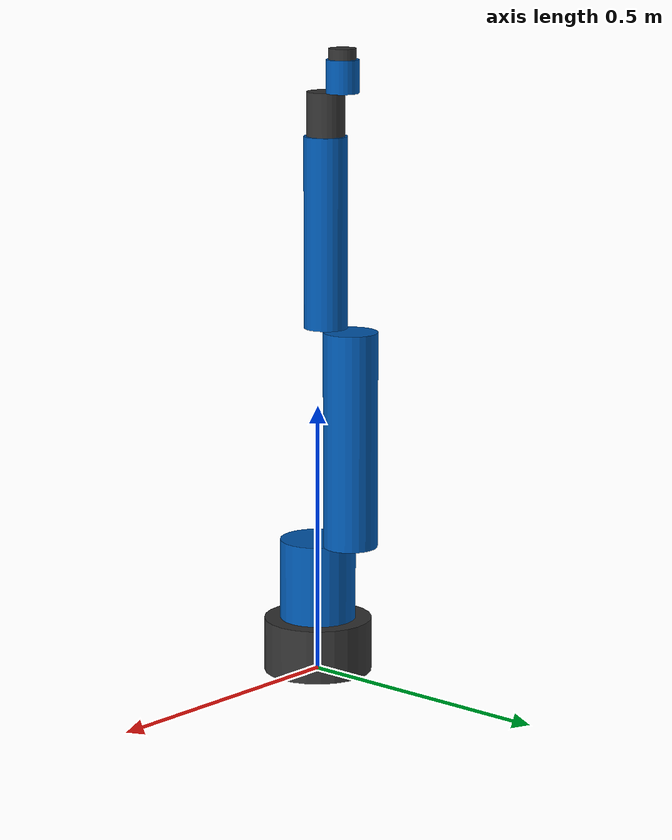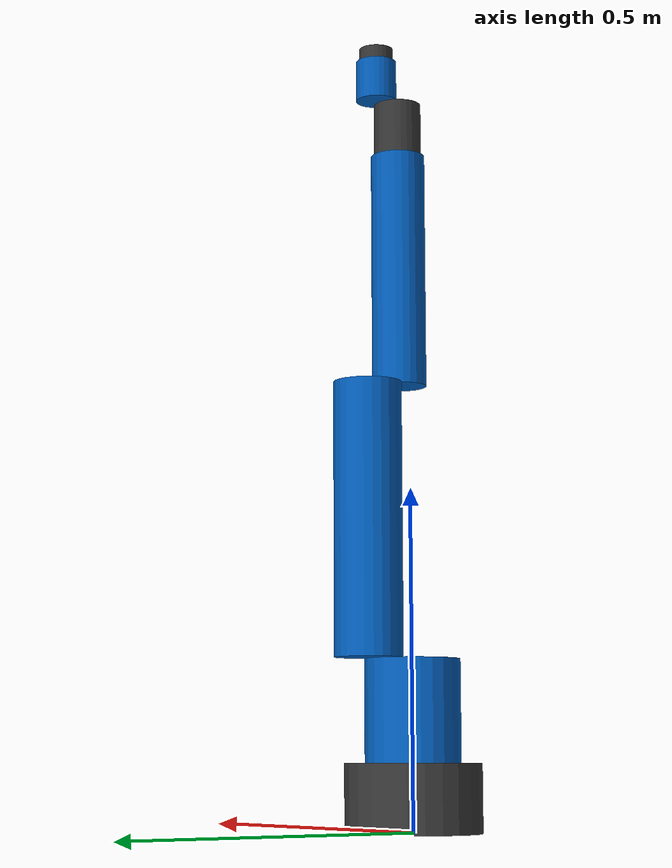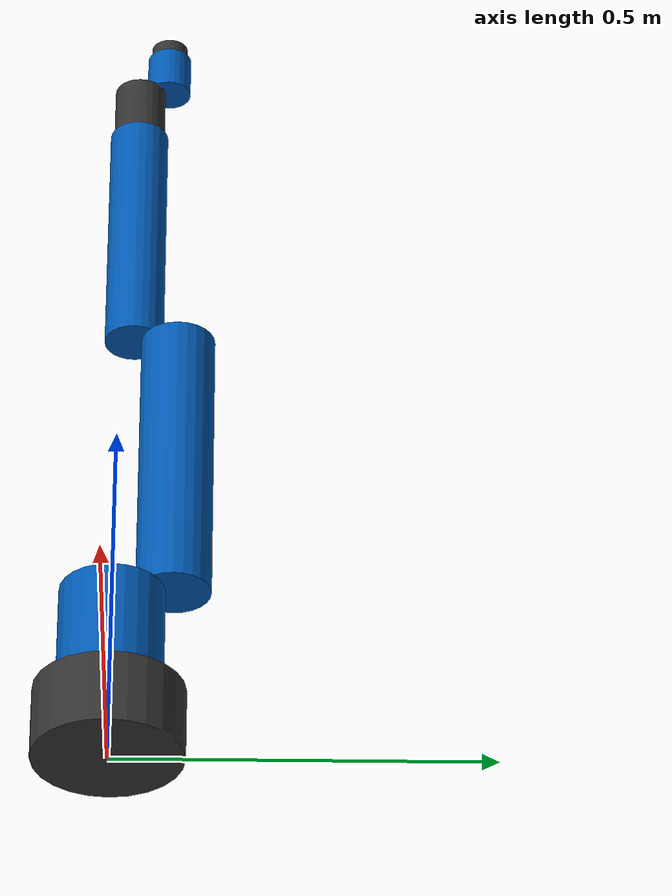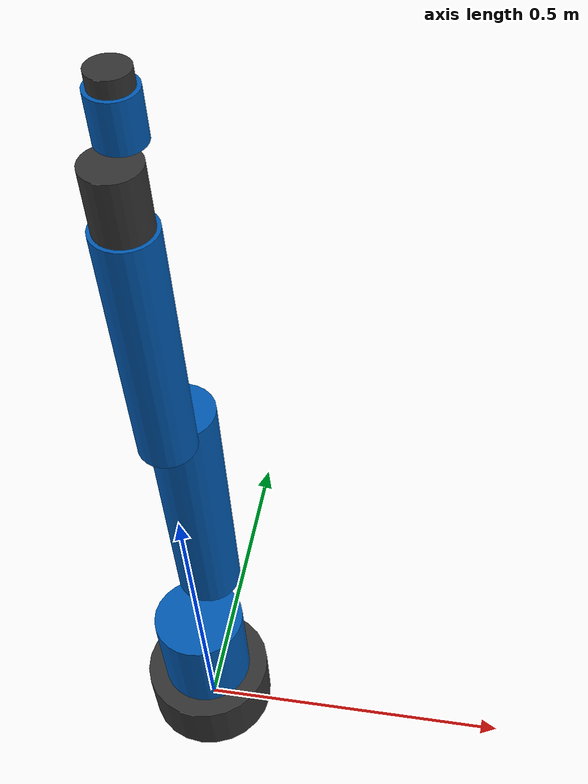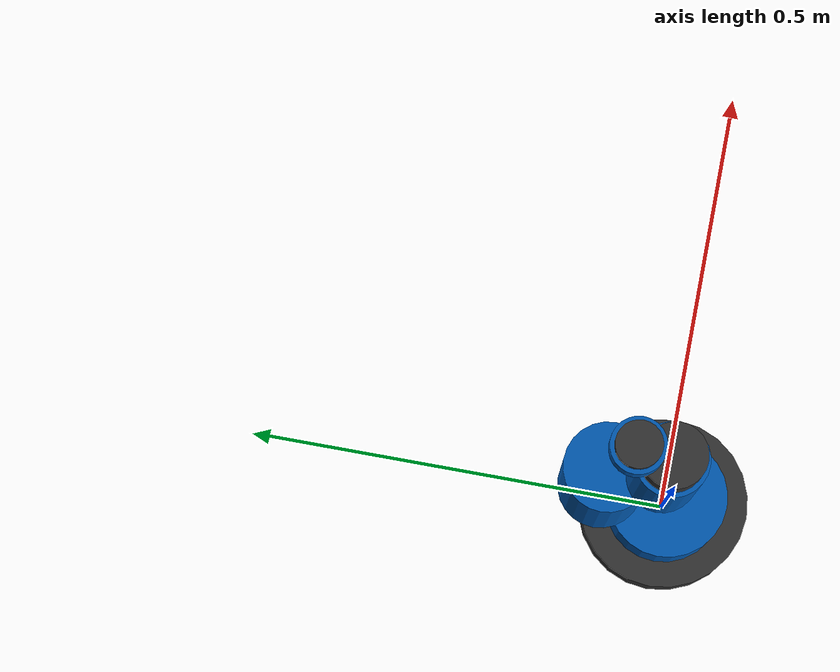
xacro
<?xml version="1.0"?>
<robot name="arm_6dof" xmlns:xacro="http://www.ros.org/wiki/xacro">

  <xacro:include filename="$(find manipulator_description)/urdf/inertials.xacro" />
  <xacro:include filename="$(find manipulator_description)/urdf/manipulator_ros2_control.xacro" />

  <xacro:arg name="use_mock_hardware" default="false" />

  <link name="world"/>

  <joint name="world_to_base_joint" type="fixed">
    <parent link="world"/>
    <child link="base_link"/>
    <origin xyz="0 0 0" rpy="0 0 0"/>
  </joint>

  <link name="base_link">
    <visual>
      <origin xyz="0 0 0.05" rpy="0 0 0"/>
      <geometry>
        <cylinder radius="0.10" length="0.10"/>
      </geometry>
      <material name="dark_grey"><color rgba="0.2 0.2 0.2 1.0"/></material>
    </visual>
    <collision>
      <origin xyz="0 0 0.05" rpy="0 0 0"/>
      <geometry>
        <cylinder radius="0.10" length="0.10"/>
      </geometry>
    </collision>
    <xacro:cylinder_inertial radius="0.10" length="0.10" mass="4.0">
      <origin xyz="0 0 0.05" rpy="0 0 0"/>
    </xacro:cylinder_inertial>
  </link>

  <joint name="joint_1" type="revolute">
    <parent link="base_link"/>
    <child link="link_1"/>
    <origin xyz="0 0 0.10" rpy="0 0 0"/>
    <axis xyz="0 0 1"/>
    <limit lower="-3.14159" upper="3.14159" effort="150.0" velocity="3.14"/>
    <dynamics damping="0.5" friction="0.1"/>
  </joint>

  <link name="link_1">
    <visual>
      <origin xyz="0 0 0.075" rpy="0 0 0"/>
      <geometry>
        <cylinder radius="0.07" length="0.15"/>
      </geometry>
      <material name="metallic_blue"><color rgba="0.0 0.35 0.7 1.0"/></material>
    </visual>
    <collision>
      <origin xyz="0 0 0.075" rpy="0 0 0"/>
      <geometry>
        <cylinder radius="0.07" length="0.15"/>
      </geometry>
    </collision>
    <xacro:cylinder_inertial radius="0.07" length="0.15" mass="3.5">
      <origin xyz="0 0 0.075" rpy="0 0 0"/>
    </xacro:cylinder_inertial>
  </link>

  <joint name="joint_2" type="revolute">
    <parent link="link_1"/>
    <child link="link_2"/>
    <origin xyz="0 0.08 0.15" rpy="0 0 0"/>
    <axis xyz="0 1 0"/>
    <limit lower="-2.0944" upper="2.0944" effort="150.0" velocity="3.14"/>
    <dynamics damping="0.5" friction="0.1"/>
  </joint>

  <link name="link_2">
    <visual>
      <origin xyz="0 0 0.20" rpy="0 0 0"/>
      <geometry>
        <cylinder radius="0.05" length="0.40"/>
      </geometry>
      <material name="metallic_blue"/>
    </visual>
    <collision>
      <origin xyz="0 0 0.20" rpy="0 0 0"/>
      <geometry>
        <cylinder radius="0.05" length="0.40"/>
      </geometry>
    </collision>
    <xacro:cylinder_inertial radius="0.05" length="0.40" mass="4.5">
      <origin xyz="0 0 0.20" rpy="0 0 0"/>
    </xacro:cylinder_inertial>
  </link>

  <joint name="joint_3" type="revolute">
    <parent link="link_2"/>
    <child link="link_3"/>
    <origin xyz="0 -0.06 0.40" rpy="0 0 0"/>
    <axis xyz="0 1 0"/>
    <limit lower="-2.61799" upper="2.61799" effort="100.0" velocity="3.14"/>
    <dynamics damping="0.4" friction="0.1"/>
  </joint>

  <link name="link_3">
    <visual>
      <origin xyz="0 0 0.175" rpy="0 0 0"/>
      <geometry>
        <cylinder radius="0.04" length="0.35"/>
      </geometry>
      <material name="metallic_blue"/>
    </visual>
    <collision>
      <origin xyz="0 0 0.175" rpy="0 0 0"/>
      <geometry>
        <cylinder radius="0.04" length="0.35"/>
      </geometry>
    </collision>
    <xacro:cylinder_inertial radius="0.04" length="0.35" mass="2.8">
      <origin xyz="0 0 0.175" rpy="0 0 0"/>
    </xacro:cylinder_inertial>
  </link>

  <joint name="joint_4" type="revolute">
    <parent link="link_3"/>
    <child link="link_4"/>
    <origin xyz="0 0 0.35" rpy="0 0 0"/>
    <axis xyz="0 0 1"/>
    <limit lower="-3.14159" upper="3.14159" effort="50.0" velocity="6.28"/>
    <dynamics damping="0.2" friction="0.05"/>
  </joint>

  <link name="link_4">
    <visual>
      <origin xyz="0 0 0.04" rpy="0 0 0"/>
      <geometry>
        <cylinder radius="0.035" length="0.08"/>
      </geometry>
      <material name="dark_grey"/>
    </visual>
    <collision>
      <origin xyz="0 0 0.04" rpy="0 0 0"/>
      <geometry>
        <cylinder radius="0.035" length="0.08"/>
      </geometry>
    </collision>
    <xacro:cylinder_inertial radius="0.035" length="0.08" mass="1.2">
      <origin xyz="0 0 0.04" rpy="0 0 0"/>
    </xacro:cylinder_inertial>
  </link>

  <joint name="joint_5" type="revolute">
    <parent link="link_4"/>
    <child link="link_5"/>
    <origin xyz="0 0.04 0.08" rpy="0 0 0"/>
    <axis xyz="0 1 0"/>
    <limit lower="-2.0944" upper="2.0944" effort="30.0" velocity="6.28"/>
    <dynamics damping="0.2" friction="0.05"/>
  </joint>

  <link name="link_5">
    <visual>
      <origin xyz="0 0 0.03" rpy="0 0 0"/>
      <geometry>
        <cylinder radius="0.03" length="0.06"/>
      </geometry>
      <material name="metallic_blue"/>
    </visual>
    <collision>
      <origin xyz="0 0 0.03" rpy="0 0 0"/>
      <geometry>
        <cylinder radius="0.03" length="0.06"/>
      </geometry>
    </collision>
    <xacro:cylinder_inertial radius="0.03" length="0.06" mass="0.8">
      <origin xyz="0 0 0.03" rpy="0 0 0"/>
    </xacro:cylinder_inertial>
  </link>

  <joint name="joint_6" type="revolute">
    <parent link="link_5"/>
    <child link="link_6"/>
    <origin xyz="0 0 0.06" rpy="0 0 0"/>
    <axis xyz="0 0 1"/>
    <limit lower="-6.28318" upper="6.28318" effort="20.0" velocity="6.28"/>
    <dynamics damping="0.1" friction="0.02"/>
  </joint>

  <link name="link_6">
    <visual>
      <origin xyz="0 0 0.01" rpy="0 0 0"/>
      <geometry>
        <cylinder radius="0.025" length="0.02"/>
      </geometry>
      <material name="dark_grey"/>
    </visual>
    <collision>
      <origin xyz="0 0 0.01" rpy="0 0 0"/>
      <geometry>
        <cylinder radius="0.025" length="0.02"/>
      </geometry>
    </collision>
    <xacro:cylinder_inertial radius="0.025" length="0.02" mass="0.4">
      <origin xyz="0 0 0.01" rpy="0 0 0"/>
    </xacro:cylinder_inertial>
  </link>

  <joint name="tcp_joint" type="fixed">
    <parent link="link_6"/>
    <child link="tool0"/>
    <origin xyz="0 0 0.02" rpy="0 0 0"/>
  </joint>
  <link name="tool0"/>

  <xacro:manipulator_ros2_control name="Arm6DofControlInterface" use_mock_hardware="$(arg use_mock_hardware)"/>

  <gazebo>
    <plugin filename="gz_ros2_control-system" name="gz_ros2_control::GazeboSimROS2ControlPlugin">
      <parameters>$(find manipulator_moveit_config)/config/ros2_controllers.yaml</parameters>
    </plugin>
  </gazebo>

</robot>

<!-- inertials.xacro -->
<robot xmlns:xacro="http://www.ros.org/wiki/xacro">

  <xacro:macro name="cylinder_inertial" params="radius length mass *origin">
    <inertial>
      <xacro:insert_block name="origin"/>
      <mass value="${mass}"/>
      <inertia
        ixx="${(1/12) * mass * (3 * radius * radius + length * length)}"
        ixy="0.0"
        ixz="0.0"
        iyy="${(1/12) * mass * (3 * radius * radius + length * length)}"
        iyz="0.0"
        izz="${(1/2) * mass * (radius * radius)}" />
    </inertial>
  </xacro:macro>

  <xacro:macro name="box_inertial" params="x y z mass *origin">
    <inertial>
      <xacro:insert_block name="origin"/>
      <mass value="${mass}"/>
      <inertia
        ixx="${(1/12) * mass * (y*y + z*z)}"
        ixy="0.0"
        ixz="0.0"
        iyy="${(1/12) * mass * (x*x + z*z)}"
        iyz="0.0"
        izz="${(1/12) * mass * (x*x + y*y)}" />
    </inertial>
  </xacro:macro>

</robot>
